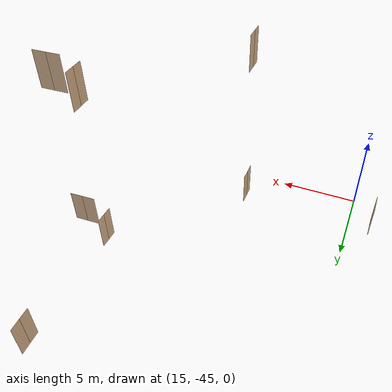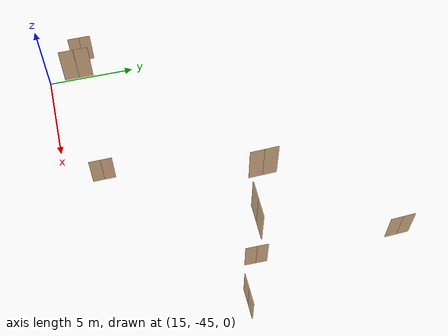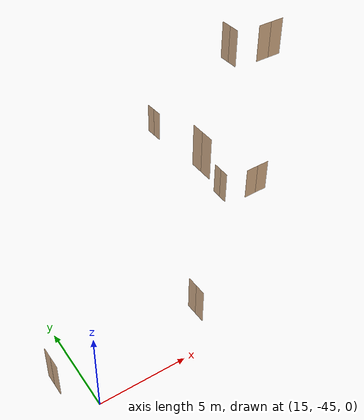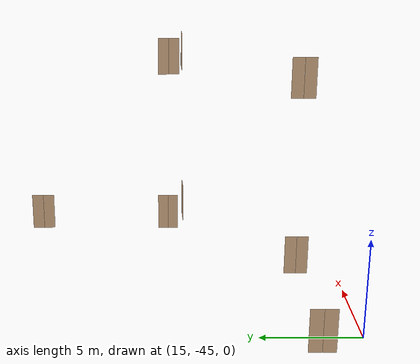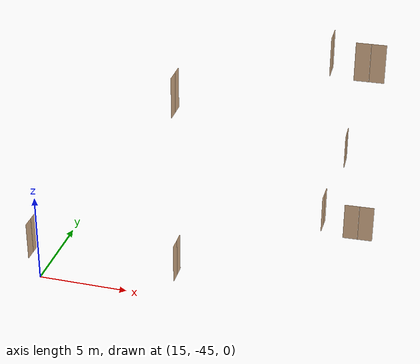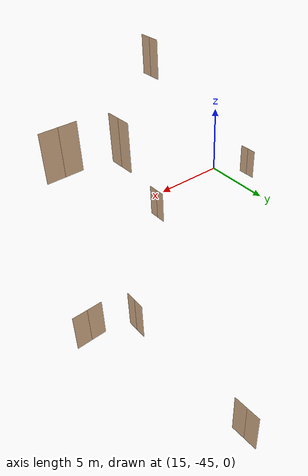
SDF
<sdf version="1.7">
 <world name="sim_world">
  <model name="door20">
   <pose>22.196594984362328 -42.79629647210699 0.0 0 0 1.5841898704715496</pose>
   <link name="right">
    <pose>0.3262262213419995 0 1.11 0 0 0</pose>
    <visual name="right_visual">
     <geometry><box><size>0.642452442683999 0.03 2.2</size></box></geometry>
     <material>
      <ambient>0.5 0.25 0 0.6</ambient>
      <diffuse>0.5 0.25 0 0.6</diffuse>
      <pbr><metal><metalness>0.0</metalness></metal></pbr>
     </material>
    </visual>
    <collision name="right_collision">
     <geometry><box><size>0.642452442683999 0.03 2.2</size></box></geometry>
     <surface><contact><collide_bitmask>0x02</collide_bitmask></contact></surface>
    </collision>
    <inertial>
     <mass>50.0</mass>
     <inertia><ixx>20.17041666666667</ixx><iyy>21.886438087960993</iyy><izz>1.7235214212943213</izz></inertia>
    </inertial>
   </link>
   <joint name="right_joint" type="revolute">
    <parent>world</parent>
    <child>right</child>
    <axis><xyz>0 0 -1</xyz><limit><lower>0</lower><upper>1.57</upper></limit></axis>
    <pose>0.3262262213419995 0 0 0 0 0</pose>
   </joint>
   <link name="left">
    <pose>-0.3262262213419995 0 1.11 0 0 0</pose>
    <visual name="left_visual">
     <geometry><box><size>0.642452442683999 0.03 2.2</size></box></geometry>
     <material>
      <ambient>0.5 0.25 0 0.6</ambient>
      <diffuse>0.5 0.25 0 0.6</diffuse>
      <pbr><metal><metalness>0.0</metalness></metal></pbr>
     </material>
    </visual>
    <collision name="left_collision">
     <geometry><box><size>0.642452442683999 0.03 2.2</size></box></geometry>
     <surface><contact><collide_bitmask>0x02</collide_bitmask></contact></surface>
    </collision>
    <inertial>
     <mass>50.0</mass>
     <inertia><ixx>20.17041666666667</ixx><iyy>21.886438087960993</iyy><izz>1.7235214212943213</izz></inertia>
    </inertial>
   </link>
   <joint name="left_joint" type="revolute">
    <parent>world</parent>
    <child>left</child>
    <axis><xyz>0 0 -1</xyz><limit><lower>-1.57</lower><upper>0</upper></limit></axis>
    <pose>-0.3262262213419995 0 0 0 0 0</pose>
   </joint>
   <plugin name="register_component" filename="libregister_component.so">
    <component name="Door">
     <v_max_door>0.5</v_max_door>
     <a_max_door>0.3</a_max_door>
     <a_nom_door>0.15</a_nom_door>
     <dx_min_door>0.01</dx_min_door>
     <f_max_door>500.0</f_max_door>
     <ros_interface>true</ros_interface>
     <door name="door20" type="DoubleSwingDoor" left_joint_name="left_joint" right_joint_name="right_joint"/>
    </component>
   </plugin>
  </model>
  <model name="door18">
   <pose>13.645016197706322 -42.78745664241474 0.0 0 0 1.5759858748518023</pose>
   <link name="right">
    <pose>0.3323023677213366 0 1.11 0 0 0</pose>
    <visual name="right_visual">
     <geometry><box><size>0.6546047354426732 0.03 2.2</size></box></geometry>
     <material>
      <ambient>0.5 0.25 0 0.6</ambient>
      <diffuse>0.5 0.25 0 0.6</diffuse>
      <pbr><metal><metalness>0.0</metalness></metal></pbr>
     </material>
    </visual>
    <collision name="right_collision">
     <geometry><box><size>0.6546047354426732 0.03 2.2</size></box></geometry>
     <surface><contact><collide_bitmask>0x02</collide_bitmask></contact></surface>
    </collision>
    <inertial>
     <mass>50.0</mass>
     <inertia><ixx>20.17041666666667</ixx><iyy>21.952113998599888</iyy><izz>1.7891973319332173</izz></inertia>
    </inertial>
   </link>
   <joint name="right_joint" type="revolute">
    <parent>world</parent>
    <child>right</child>
    <axis><xyz>0 0 -1</xyz><limit><lower>0</lower><upper>1.57</upper></limit></axis>
    <pose>0.3323023677213366 0 0 0 0 0</pose>
   </joint>
   <link name="left">
    <pose>-0.3323023677213366 0 1.11 0 0 0</pose>
    <visual name="left_visual">
     <geometry><box><size>0.6546047354426732 0.03 2.2</size></box></geometry>
     <material>
      <ambient>0.5 0.25 0 0.6</ambient>
      <diffuse>0.5 0.25 0 0.6</diffuse>
      <pbr><metal><metalness>0.0</metalness></metal></pbr>
     </material>
    </visual>
    <collision name="left_collision">
     <geometry><box><size>0.6546047354426732 0.03 2.2</size></box></geometry>
     <surface><contact><collide_bitmask>0x02</collide_bitmask></contact></surface>
    </collision>
    <inertial>
     <mass>50.0</mass>
     <inertia><ixx>20.17041666666667</ixx><iyy>21.952113998599888</iyy><izz>1.7891973319332173</izz></inertia>
    </inertial>
   </link>
   <joint name="left_joint" type="revolute">
    <parent>world</parent>
    <child>left</child>
    <axis><xyz>0 0 -1</xyz><limit><lower>-1.57</lower><upper>0</upper></limit></axis>
    <pose>-0.3323023677213366 0 0 0 0 0</pose>
   </joint>
   <plugin name="register_component" filename="libregister_component.so">
    <component name="Door">
     <v_max_door>0.5</v_max_door>
     <a_max_door>0.3</a_max_door>
     <a_nom_door>0.15</a_nom_door>
     <dx_min_door>0.01</dx_min_door>
     <f_max_door>500.0</f_max_door>
     <ros_interface>true</ros_interface>
     <door name="door18" type="DoubleSwingDoor" left_joint_name="left_joint" right_joint_name="right_joint"/>
    </component>
   </plugin>
  </model>
  <model name="door30">
   <pose>29.077387993087957 -27.64226337983834 0.0 0 0 1.6121950248561212</pose>
   <link name="right">
    <pose>0.34384516931874454 0 1.11 0 0 0</pose>
    <visual name="right_visual">
     <geometry><box><size>0.6776903386374891 0.03 2.2</size></box></geometry>
     <material>
      <ambient>0.5 0.25 0 0.6</ambient>
      <diffuse>0.5 0.25 0 0.6</diffuse>
      <pbr><metal><metalness>0.0</metalness></metal></pbr>
     </material>
    </visual>
    <collision name="right_collision">
     <geometry><box><size>0.6776903386374891 0.03 2.2</size></box></geometry>
     <surface><contact><collide_bitmask>0x02</collide_bitmask></contact></surface>
    </collision>
    <inertial>
     <mass>50.0</mass>
     <inertia><ixx>20.17041666666667</ixx><iyy>22.080267479510816</iyy><izz>1.9173508128441443</izz></inertia>
    </inertial>
   </link>
   <joint name="right_joint" type="revolute">
    <parent>world</parent>
    <child>right</child>
    <axis><xyz>0 0 1</xyz><limit><lower>0</lower><upper>1.57</upper></limit></axis>
    <pose>0.34384516931874454 0 0 0 0 0</pose>
   </joint>
   <link name="left">
    <pose>-0.34384516931874454 0 1.11 0 0 0</pose>
    <visual name="left_visual">
     <geometry><box><size>0.6776903386374891 0.03 2.2</size></box></geometry>
     <material>
      <ambient>0.5 0.25 0 0.6</ambient>
      <diffuse>0.5 0.25 0 0.6</diffuse>
      <pbr><metal><metalness>0.0</metalness></metal></pbr>
     </material>
    </visual>
    <collision name="left_collision">
     <geometry><box><size>0.6776903386374891 0.03 2.2</size></box></geometry>
     <surface><contact><collide_bitmask>0x02</collide_bitmask></contact></surface>
    </collision>
    <inertial>
     <mass>50.0</mass>
     <inertia><ixx>20.17041666666667</ixx><iyy>22.080267479510816</iyy><izz>1.9173508128441443</izz></inertia>
    </inertial>
   </link>
   <joint name="left_joint" type="revolute">
    <parent>world</parent>
    <child>left</child>
    <axis><xyz>0 0 1</xyz><limit><lower>-1.57</lower><upper>0</upper></limit></axis>
    <pose>-0.34384516931874454 0 0 0 0 0</pose>
   </joint>
   <plugin name="register_component" filename="libregister_component.so">
    <component name="Door">
     <v_max_door>0.5</v_max_door>
     <a_max_door>0.3</a_max_door>
     <a_nom_door>0.15</a_nom_door>
     <dx_min_door>0.01</dx_min_door>
     <f_max_door>500.0</f_max_door>
     <ros_interface>true</ros_interface>
     <door name="door30" type="DoubleSwingDoor" left_joint_name="left_joint" right_joint_name="right_joint"/>
    </component>
   </plugin>
  </model>
  <model name="door33">
   <pose>29.060751723437633 -35.60632679701412 0.0 0 0 1.5595276240747098</pose>
   <link name="right">
    <pose>0.31121799356818586 0 1.11 0 0 0</pose>
    <visual name="right_visual">
     <geometry><box><size>0.6124359871363717 0.03 2.2</size></box></geometry>
     <material>
      <ambient>0.5 0.25 0 0.6</ambient>
      <diffuse>0.5 0.25 0 0.6</diffuse>
      <pbr><metal><metalness>0.0</metalness></metal></pbr>
     </material>
    </visual>
    <collision name="right_collision">
     <geometry><box><size>0.6124359871363717 0.03 2.2</size></box></geometry>
     <surface><contact><collide_bitmask>0x02</collide_bitmask></contact></surface>
    </collision>
    <inertial>
     <mass>50.0</mass>
     <inertia><ixx>20.17041666666667</ixx><iyy>21.729490993082095</iyy><izz>1.5665743264154253</izz></inertia>
    </inertial>
   </link>
   <joint name="right_joint" type="revolute">
    <parent>world</parent>
    <child>right</child>
    <axis><xyz>0 0 1</xyz><limit><lower>0</lower><upper>1.57</upper></limit></axis>
    <pose>0.31121799356818586 0 0 0 0 0</pose>
   </joint>
   <link name="left">
    <pose>-0.31121799356818586 0 1.11 0 0 0</pose>
    <visual name="left_visual">
     <geometry><box><size>0.6124359871363717 0.03 2.2</size></box></geometry>
     <material>
      <ambient>0.5 0.25 0 0.6</ambient>
      <diffuse>0.5 0.25 0 0.6</diffuse>
      <pbr><metal><metalness>0.0</metalness></metal></pbr>
     </material>
    </visual>
    <collision name="left_collision">
     <geometry><box><size>0.6124359871363717 0.03 2.2</size></box></geometry>
     <surface><contact><collide_bitmask>0x02</collide_bitmask></contact></surface>
    </collision>
    <inertial>
     <mass>50.0</mass>
     <inertia><ixx>20.17041666666667</ixx><iyy>21.729490993082095</iyy><izz>1.5665743264154253</izz></inertia>
    </inertial>
   </link>
   <joint name="left_joint" type="revolute">
    <parent>world</parent>
    <child>left</child>
    <axis><xyz>0 0 1</xyz><limit><lower>-1.57</lower><upper>0</upper></limit></axis>
    <pose>-0.31121799356818586 0 0 0 0 0</pose>
   </joint>
   <plugin name="register_component" filename="libregister_component.so">
    <component name="Door">
     <v_max_door>0.5</v_max_door>
     <a_max_door>0.3</a_max_door>
     <a_nom_door>0.15</a_nom_door>
     <dx_min_door>0.01</dx_min_door>
     <f_max_door>500.0</f_max_door>
     <ros_interface>true</ros_interface>
     <door name="door33" type="DoubleSwingDoor" left_joint_name="left_joint" right_joint_name="right_joint"/>
    </component>
   </plugin>
  </model>
  <model name="door34_end">
   <pose>31.24236372538701 -36.553971031546716 0.0 0 0 -3.1073071053219823</pose>
   <link name="right">
    <pose>0.4244453360944399 0 1.11 0 0 0</pose>
    <visual name="right_visual">
     <geometry><box><size>0.8388906721888798 0.03 2.2</size></box></geometry>
     <material>
      <ambient>0.5 0.25 0 0.6</ambient>
      <diffuse>0.5 0.25 0 0.6</diffuse>
      <pbr><metal><metalness>0.0</metalness></metal></pbr>
     </material>
    </visual>
    <collision name="right_collision">
     <geometry><box><size>0.8388906721888798 0.03 2.2</size></box></geometry>
     <surface><contact><collide_bitmask>0x02</collide_bitmask></contact></surface>
    </collision>
    <inertial>
     <mass>50.0</mass>
     <inertia><ixx>20.17041666666667</ixx><iyy>23.098906499522965</iyy><izz>2.9359898328562943</izz></inertia>
    </inertial>
   </link>
   <joint name="right_joint" type="revolute">
    <parent>world</parent>
    <child>right</child>
    <axis><xyz>0 0 -1</xyz><limit><lower>0</lower><upper>1.57</upper></limit></axis>
    <pose>0.4244453360944399 0 0 0 0 0</pose>
   </joint>
   <link name="left">
    <pose>-0.4244453360944399 0 1.11 0 0 0</pose>
    <visual name="left_visual">
     <geometry><box><size>0.8388906721888798 0.03 2.2</size></box></geometry>
     <material>
      <ambient>0.5 0.25 0 0.6</ambient>
      <diffuse>0.5 0.25 0 0.6</diffuse>
      <pbr><metal><metalness>0.0</metalness></metal></pbr>
     </material>
    </visual>
    <collision name="left_collision">
     <geometry><box><size>0.8388906721888798 0.03 2.2</size></box></geometry>
     <surface><contact><collide_bitmask>0x02</collide_bitmask></contact></surface>
    </collision>
    <inertial>
     <mass>50.0</mass>
     <inertia><ixx>20.17041666666667</ixx><iyy>23.098906499522965</iyy><izz>2.9359898328562943</izz></inertia>
    </inertial>
   </link>
   <joint name="left_joint" type="revolute">
    <parent>world</parent>
    <child>left</child>
    <axis><xyz>0 0 -1</xyz><limit><lower>-1.57</lower><upper>0</upper></limit></axis>
    <pose>-0.4244453360944399 0 0 0 0 0</pose>
   </joint>
   <plugin name="register_component" filename="libregister_component.so">
    <component name="Door">
     <v_max_door>0.5</v_max_door>
     <a_max_door>0.3</a_max_door>
     <a_nom_door>0.15</a_nom_door>
     <dx_min_door>0.01</dx_min_door>
     <f_max_door>500.0</f_max_door>
     <ros_interface>true</ros_interface>
     <door name="door34_end" type="DoubleSwingDoor" left_joint_name="left_joint" right_joint_name="right_joint"/>
    </component>
   </plugin>
  </model>
  <model name="N1_door25">
   <pose>29.03334344268106 -35.659298223171604 10.0 0 0 1.59909431136708</pose>
   <link name="right">
    <pose>0.31801738144546654 0 1.11 0 0 0</pose>
    <visual name="right_visual">
     <geometry><box><size>0.6260347628909331 0.03 2.2</size></box></geometry>
     <material>
      <ambient>0.5 0.25 0 0.6</ambient>
      <diffuse>0.5 0.25 0 0.6</diffuse>
      <pbr><metal><metalness>0.0</metalness></metal></pbr>
     </material>
    </visual>
    <collision name="right_collision">
     <geometry><box><size>0.6260347628909331 0.03 2.2</size></box></geometry>
     <surface><contact><collide_bitmask>0x02</collide_bitmask></contact></surface>
    </collision>
    <inertial>
     <mass>50.0</mass>
     <inertia><ixx>20.17041666666667</ixx><iyy>21.79966468478295</iyy><izz>1.6367480181162783</izz></inertia>
    </inertial>
   </link>
   <joint name="right_joint" type="revolute">
    <parent>world</parent>
    <child>right</child>
    <axis><xyz>0 0 1</xyz><limit><lower>0</lower><upper>1.57</upper></limit></axis>
    <pose>0.31801738144546654 0 0 0 0 0</pose>
   </joint>
   <link name="left">
    <pose>-0.31801738144546654 0 1.11 0 0 0</pose>
    <visual name="left_visual">
     <geometry><box><size>0.6260347628909331 0.03 2.2</size></box></geometry>
     <material>
      <ambient>0.5 0.25 0 0.6</ambient>
      <diffuse>0.5 0.25 0 0.6</diffuse>
      <pbr><metal><metalness>0.0</metalness></metal></pbr>
     </material>
    </visual>
    <collision name="left_collision">
     <geometry><box><size>0.6260347628909331 0.03 2.2</size></box></geometry>
     <surface><contact><collide_bitmask>0x02</collide_bitmask></contact></surface>
    </collision>
    <inertial>
     <mass>50.0</mass>
     <inertia><ixx>20.17041666666667</ixx><iyy>21.79966468478295</iyy><izz>1.6367480181162783</izz></inertia>
    </inertial>
   </link>
   <joint name="left_joint" type="revolute">
    <parent>world</parent>
    <child>left</child>
    <axis><xyz>0 0 1</xyz><limit><lower>-1.57</lower><upper>0</upper></limit></axis>
    <pose>-0.31801738144546654 0 0 0 0 0</pose>
   </joint>
   <plugin name="register_component" filename="libregister_component.so">
    <component name="Door">
     <v_max_door>0.5</v_max_door>
     <a_max_door>0.3</a_max_door>
     <a_nom_door>0.15</a_nom_door>
     <dx_min_door>0.01</dx_min_door>
     <f_max_door>500.0</f_max_door>
     <ros_interface>true</ros_interface>
     <door name="N1_door25" type="DoubleSwingDoor" left_joint_name="left_joint" right_joint_name="right_joint"/>
    </component>
   </plugin>
  </model>
  <model name="N1_door27_end">
   <pose>31.21231308713694 -36.46487298664441 10.0 0 0 -3.118249667982511</pose>
   <link name="right">
    <pose>0.41189650831726277 0 1.11 0 0 0</pose>
    <visual name="right_visual">
     <geometry><box><size>0.8137930166345255 0.03 2.2</size></box></geometry>
     <material>
      <ambient>0.5 0.25 0 0.6</ambient>
      <diffuse>0.5 0.25 0 0.6</diffuse>
      <pbr><metal><metalness>0.0</metalness></metal></pbr>
     </material>
    </visual>
    <collision name="right_collision">
     <geometry><box><size>0.8137930166345255 0.03 2.2</size></box></geometry>
     <surface><contact><collide_bitmask>0x02</collide_bitmask></contact></surface>
    </collision>
    <inertial>
     <mass>50.0</mass>
     <inertia><ixx>20.17041666666667</ixx><iyy>22.92607947467968</iyy><izz>2.763162808013005</izz></inertia>
    </inertial>
   </link>
   <joint name="right_joint" type="revolute">
    <parent>world</parent>
    <child>right</child>
    <axis><xyz>0 0 -1</xyz><limit><lower>0</lower><upper>1.57</upper></limit></axis>
    <pose>0.41189650831726277 0 0 0 0 0</pose>
   </joint>
   <link name="left">
    <pose>-0.41189650831726277 0 1.11 0 0 0</pose>
    <visual name="left_visual">
     <geometry><box><size>0.8137930166345255 0.03 2.2</size></box></geometry>
     <material>
      <ambient>0.5 0.25 0 0.6</ambient>
      <diffuse>0.5 0.25 0 0.6</diffuse>
      <pbr><metal><metalness>0.0</metalness></metal></pbr>
     </material>
    </visual>
    <collision name="left_collision">
     <geometry><box><size>0.8137930166345255 0.03 2.2</size></box></geometry>
     <surface><contact><collide_bitmask>0x02</collide_bitmask></contact></surface>
    </collision>
    <inertial>
     <mass>50.0</mass>
     <inertia><ixx>20.17041666666667</ixx><iyy>22.92607947467968</iyy><izz>2.763162808013005</izz></inertia>
    </inertial>
   </link>
   <joint name="left_joint" type="revolute">
    <parent>world</parent>
    <child>left</child>
    <axis><xyz>0 0 -1</xyz><limit><lower>-1.57</lower><upper>0</upper></limit></axis>
    <pose>-0.41189650831726277 0 0 0 0 0</pose>
   </joint>
   <plugin name="register_component" filename="libregister_component.so">
    <component name="Door">
     <v_max_door>0.5</v_max_door>
     <a_max_door>0.3</a_max_door>
     <a_nom_door>0.15</a_nom_door>
     <dx_min_door>0.01</dx_min_door>
     <f_max_door>500.0</f_max_door>
     <ros_interface>true</ros_interface>
     <door name="N1_door27_end" type="DoubleSwingDoor" left_joint_name="left_joint" right_joint_name="right_joint"/>
    </component>
   </plugin>
  </model>
  <model name="N1_door16_end">
   <pose>22.202778413206865 -42.78662409793002 10.0 0 0 1.576424224856081</pose>
   <link name="right">
    <pose>0.33152666170970646 0 1.11 0 0 0</pose>
    <visual name="right_visual">
     <geometry><box><size>0.6530533234194129 0.03 2.2</size></box></geometry>
     <material>
      <ambient>0.5 0.25 0 0.6</ambient>
      <diffuse>0.5 0.25 0 0.6</diffuse>
      <pbr><metal><metalness>0.0</metalness></metal></pbr>
     </material>
    </visual>
    <collision name="right_collision">
     <geometry><box><size>0.6530533234194129 0.03 2.2</size></box></geometry>
     <surface><contact><collide_bitmask>0x02</collide_bitmask></contact></surface>
    </collision>
    <inertial>
     <mass>50.0</mass>
     <inertia><ixx>20.17041666666667</ixx><iyy>21.943661013454758</iyy><izz>1.7807443467880848</izz></inertia>
    </inertial>
   </link>
   <joint name="right_joint" type="revolute">
    <parent>world</parent>
    <child>right</child>
    <axis><xyz>0 0 -1</xyz><limit><lower>0</lower><upper>1.57</upper></limit></axis>
    <pose>0.33152666170970646 0 0 0 0 0</pose>
   </joint>
   <link name="left">
    <pose>-0.33152666170970646 0 1.11 0 0 0</pose>
    <visual name="left_visual">
     <geometry><box><size>0.6530533234194129 0.03 2.2</size></box></geometry>
     <material>
      <ambient>0.5 0.25 0 0.6</ambient>
      <diffuse>0.5 0.25 0 0.6</diffuse>
      <pbr><metal><metalness>0.0</metalness></metal></pbr>
     </material>
    </visual>
    <collision name="left_collision">
     <geometry><box><size>0.6530533234194129 0.03 2.2</size></box></geometry>
     <surface><contact><collide_bitmask>0x02</collide_bitmask></contact></surface>
    </collision>
    <inertial>
     <mass>50.0</mass>
     <inertia><ixx>20.17041666666667</ixx><iyy>21.943661013454758</iyy><izz>1.7807443467880848</izz></inertia>
    </inertial>
   </link>
   <joint name="left_joint" type="revolute">
    <parent>world</parent>
    <child>left</child>
    <axis><xyz>0 0 -1</xyz><limit><lower>-1.57</lower><upper>0</upper></limit></axis>
    <pose>-0.33152666170970646 0 0 0 0 0</pose>
   </joint>
   <plugin name="register_component" filename="libregister_component.so">
    <component name="Door">
     <v_max_door>0.5</v_max_door>
     <a_max_door>0.3</a_max_door>
     <a_nom_door>0.15</a_nom_door>
     <dx_min_door>0.01</dx_min_door>
     <f_max_door>500.0</f_max_door>
     <ros_interface>true</ros_interface>
     <door name="N1_door16_end" type="DoubleSwingDoor" left_joint_name="left_joint" right_joint_name="right_joint"/>
    </component>
   </plugin>
  </model>
 </world>
</sdf>
